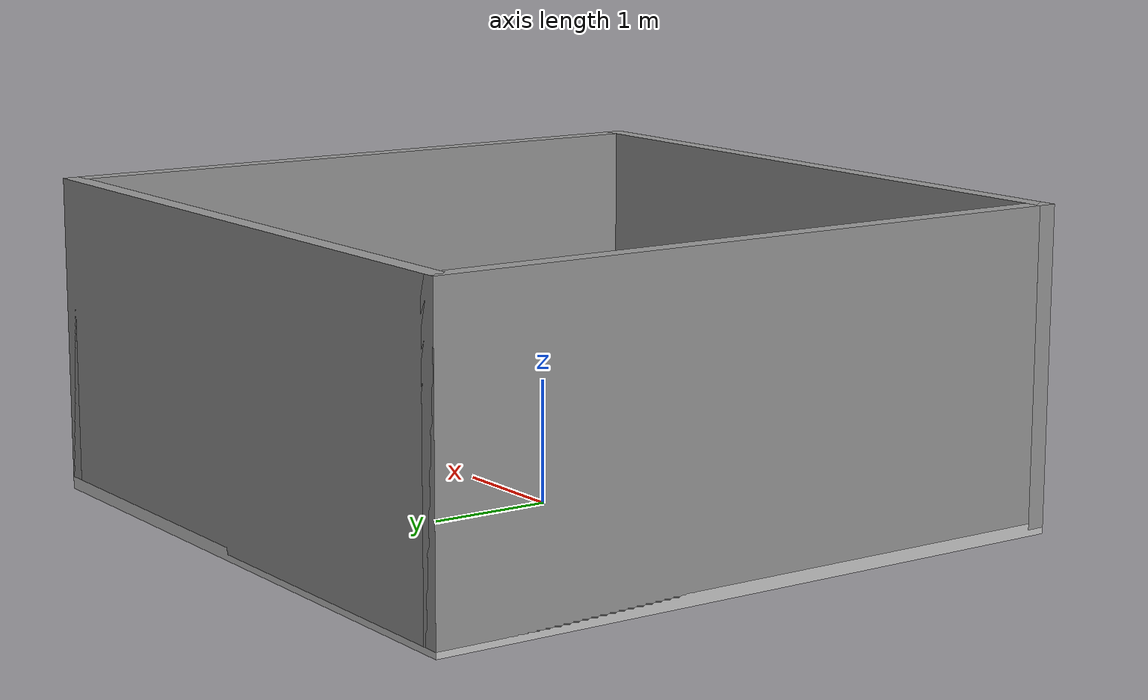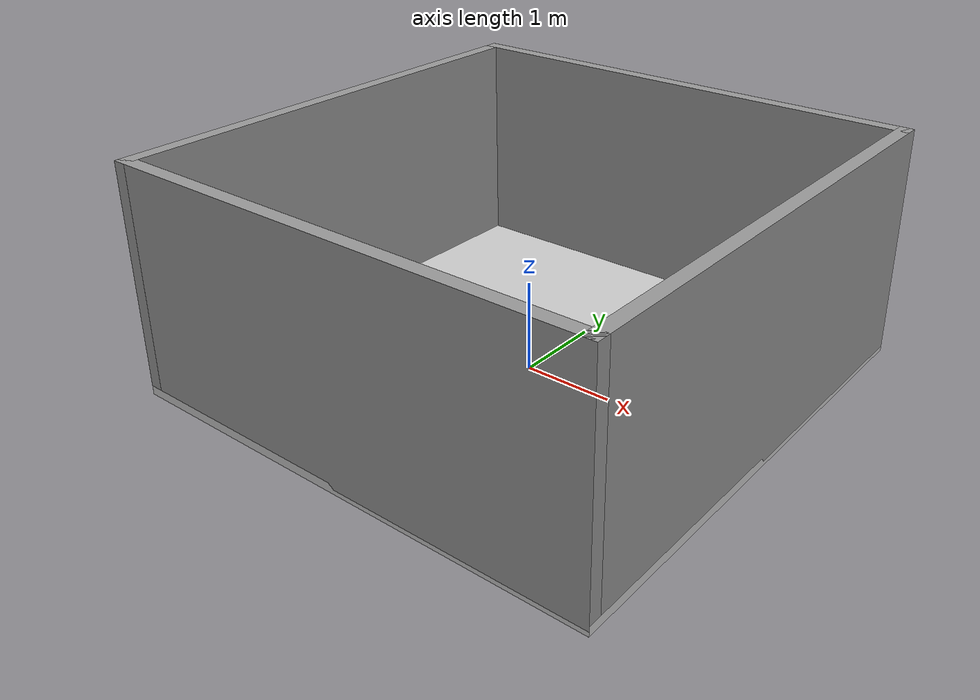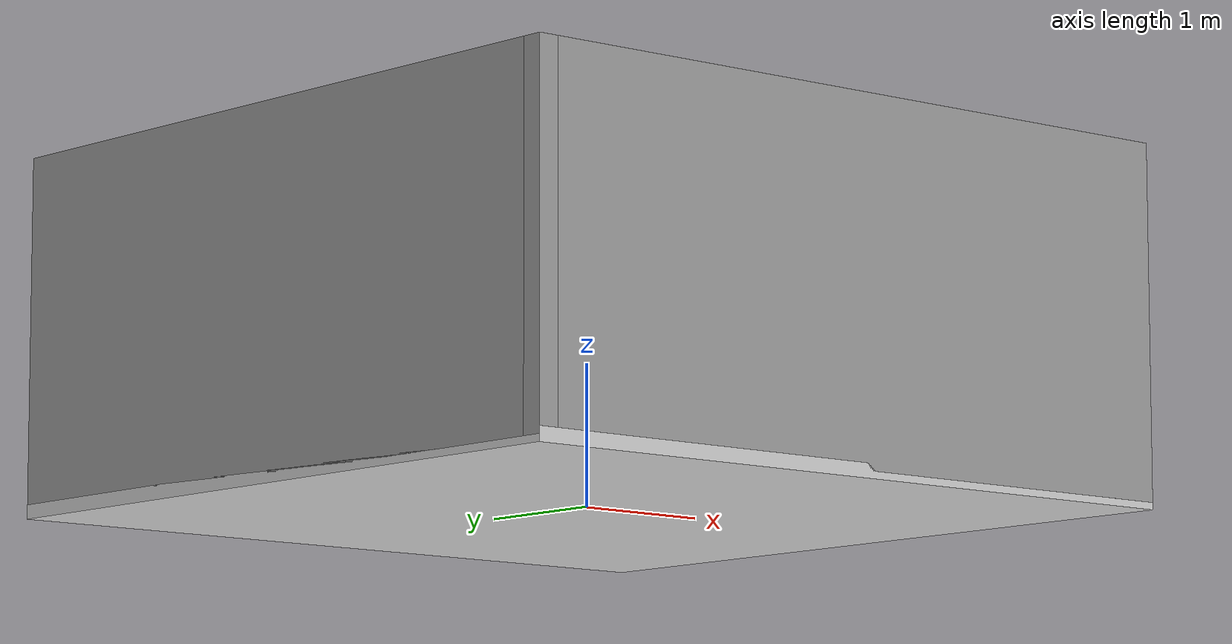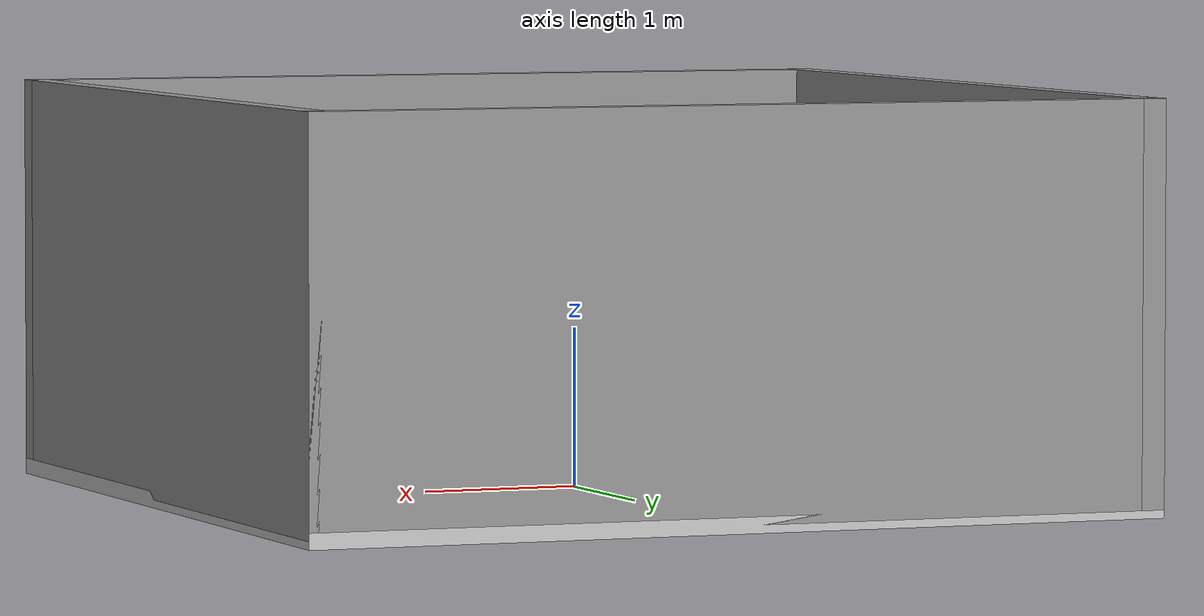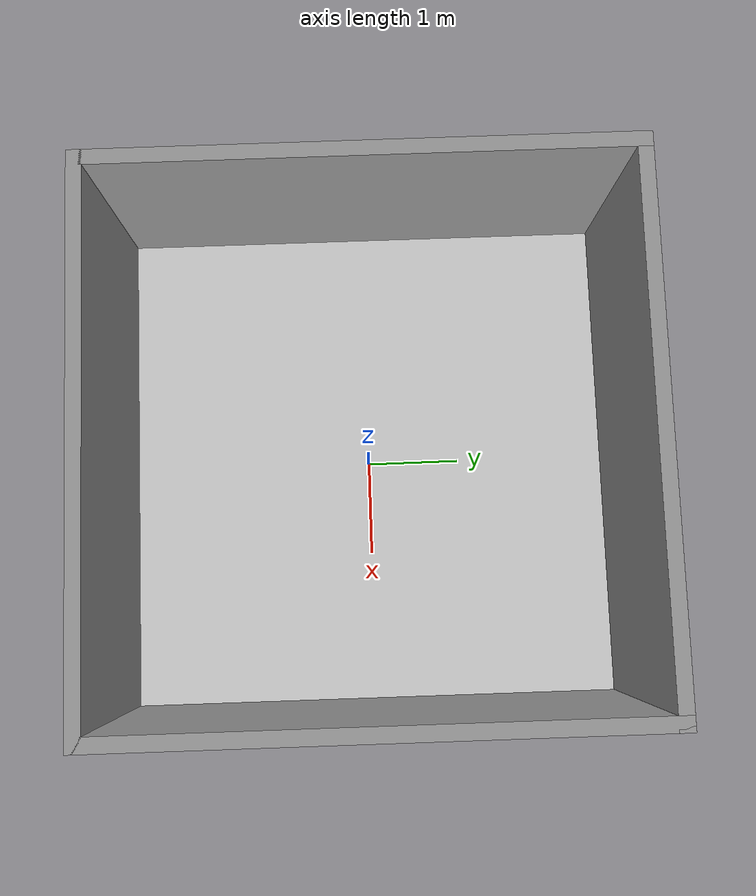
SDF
<?xml version='1.0'?>
<sdf version='1.7'>
  <model name='community_base'>
    <pose>-0.009983 0.008771 0 0 -0 0</pose>

    <!--west_wall-->
    <link name='Wall_10'>
      <collision name='Wall_10_Collision'>
        <geometry>
          <box>
            <size>5.5 0.15 2.5</size>
          </box>
        </geometry>
        <pose>0 0 1.25 0 -0 0</pose>
      </collision>
      <visual name='Wall_10_Visual'>
        <pose>0 0 1.25 0 -0 0</pose>
        <geometry>
          <box>
            <size>5.5 0.15 2.5</size>
          </box>
        </geometry>
        <material>
          <script>
            <uri>file://media/materials/scripts/gazebo.material</uri>
            <name>Gazebo/Grey</name>
          </script>
          <ambient>1 1 1 1</ambient>
        </material>
        <meta>
          <layer>0</layer>
        </meta>
      </visual>
      <pose>-2.675 0 0 0 -0 1.5708</pose>
    </link>

    <!--north_wall-->
    <link name='Wall_7'>
      <collision name='Wall_7_Collision'>
        <geometry>
          <box>
            <size>5.5 0.15 2.5</size>
          </box>
        </geometry>
        <pose>0 0 1.25 0 -0 0</pose>
      </collision>
      <visual name='Wall_7_Visual'>
        <pose>0 0 1.25 0 -0 0</pose>
        <geometry>
          <box>
            <size>5.5 0.15 2.5</size>
          </box>
        </geometry>
        <material>
          <script>
            <uri>file://media/materials/scripts/gazebo.material</uri>
            <name>Gazebo/Grey</name>
          </script>
          <ambient>1 1 1 1</ambient>
        </material>
        <meta>
          <layer>0</layer>
        </meta>
      </visual>
      <pose>-0 2.675 0 0 -0 0</pose>
    </link>

    <!--east_wall-->
    <link name='Wall_8'>
      <collision name='Wall_8_Collision'>
        <geometry>
          <box>
            <size>5.5 0.15 2.5</size>
          </box>
        </geometry>
        <pose>0 0 1.25 0 -0 0</pose>
      </collision>
      <visual name='Wall_8_Visual'>
        <pose>0 0 1.25 0 -0 0</pose>
        <geometry>
          <box>
            <size>5.5 0.15 2.5</size>
          </box>
        </geometry>
        <material>
          <script>
            <uri>file://media/materials/scripts/gazebo.material</uri>
            <name>Gazebo/Grey</name>
          </script>
          <ambient>1 1 1 1</ambient>
        </material>
        <meta>
          <layer>0</layer>
        </meta>
      </visual>
      <pose>2.675 0 0 0 -0 -1.5708</pose>
    </link>

    <!--south_wall-->
    <link name='Wall_9'>
      <collision name='Wall_9_Collision'>
        <geometry>
          <box>
            <size>5.5 0.15 2.5</size>
          </box>
        </geometry>
        <pose>0 0 1.25 0 -0 0</pose>
      </collision>
      <visual name='Wall_9_Visual'>
        <pose>0 0 1.25 0 -0 0</pose>
        <geometry>
          <box>
            <size>5.5 0.15 2.5</size>
          </box>
        </geometry>
        <material>
          <script>
            <uri>file://media/materials/scripts/gazebo.material</uri>
            <name>Gazebo/Grey</name>
          </script>
          <ambient>1 1 1 1</ambient>
        </material>
        <meta>
          <layer>0</layer>
        </meta>
      </visual>
      <pose>-0 -2.675 0 0 -0 3.14159</pose>
    </link>

    <!--map link-->
    <!-- 地图地面link -->
    <link name="link">
        <!-- 位姿：位置(0,0,0)，姿态(0,0,1.5708=90°) -->
        <pose>0 0 0 0 0 1.5708</pose>

        <!-- 碰撞属性：定义物理碰撞边界 -->
        <collision name="collision">
            <geometry>
                <box>
                    <!--：6m × 6m × 0.1m的薄板 -->
                    <size>5.5 5.5 0.1</size>
                </box>
            </geometry>
        </collision>

        <!-- 视觉属性：定义渲染外观 -->
        <visual name="visual">
            <geometry>
                <box>
                    <size>5.5 5.5 0.1</size>
                </box>
            </geometry>
            <material>
                <script>
                    <!-- 材质脚本路径 -->
                    <uri>model://community_base/materials/scripts</uri>
                    <!-- 纹理资源路径 -->
                    <uri>model://community_base/materials/textures</uri>
                    <!-- 材质名称 -->
                    <name>Community/Ground</name>
                </script>
                <!-- 环境光颜色：浅灰色 -->
                <ambient>0.8 0.8 0.8 1</ambient>
            </material>
        </visual>
    </link>

    <static>1</static>
  </model>
</sdf>
